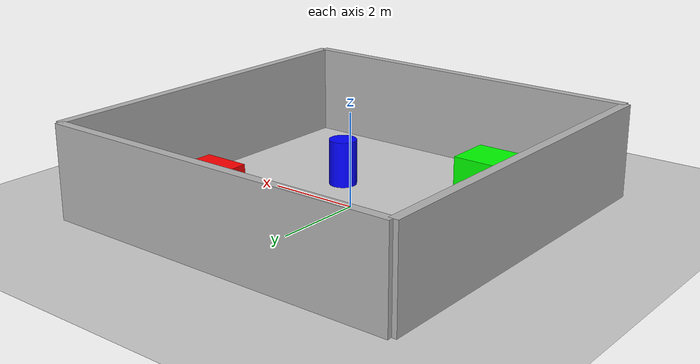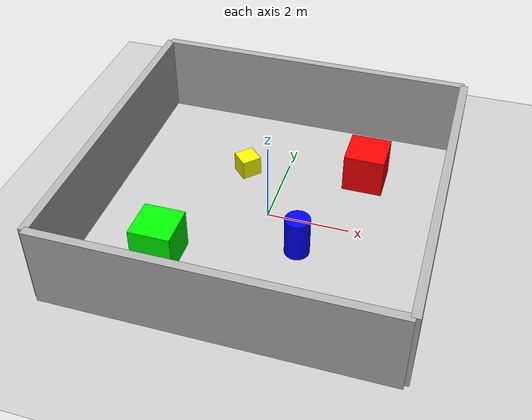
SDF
<?xml version="1.0" ?>
<sdf version="1.8">
  <world name="vacuum_world">

    <!-- Physics settings -->
    <physics name="10ms" type="ode">
      <max_step_size>0.01</max_step_size>
      <real_time_factor>1.0</real_time_factor>
      <real_time_update_rate>100</real_time_update_rate>
    </physics>

    <!-- Plugin for physics -->
    <plugin
      filename="gz-sim-physics-system"
      name="gz::sim::systems::Physics">
    </plugin>

    <!-- Plugin for user commands -->
    <plugin
      filename="gz-sim-user-commands-system"
      name="gz::sim::systems::UserCommands">
    </plugin>

    <!-- Plugin for scene broadcaster -->
    <plugin
      filename="gz-sim-scene-broadcaster-system"
      name="gz::sim::systems::SceneBroadcaster">
    </plugin>

    <!-- Plugin for sensors -->
    <plugin
      filename="gz-sim-sensors-system"
      name="gz::sim::systems::Sensors">
      <render_engine>ogre2</render_engine>
    </plugin>

    <!-- Sun light -->
    <light type="directional" name="sun">
      <cast_shadows>true</cast_shadows>
      <pose>0 0 10 0 0 0</pose>
      <diffuse>0.8 0.8 0.8 1</diffuse>
      <specular>0.2 0.2 0.2 1</specular>
      <attenuation>
        <range>1000</range>
        <constant>0.9</constant>
        <linear>0.01</linear>
        <quadratic>0.001</quadratic>
      </attenuation>
      <direction>-0.5 0.1 -0.9</direction>
    </light>

    <!-- Ground plane -->
    <model name="ground_plane">
      <static>true</static>
      <link name="link">
        <collision name="collision">
          <geometry>
            <plane>
              <normal>0 0 1</normal>
              <size>100 100</size>
            </plane>
          </geometry>
        </collision>
        <visual name="visual">
          <geometry>
            <plane>
              <normal>0 0 1</normal>
              <size>100 100</size>
            </plane>
          </geometry>
          <material>
            <ambient>0.8 0.8 0.8 1</ambient>
            <diffuse>0.8 0.8 0.8 1</diffuse>
            <specular>0.8 0.8 0.8 1</specular>
          </material>
        </visual>
      </link>
    </model>

    <!-- Simple test obstacles -->
    <model name="box1">
      <pose>2 2 0.5 0 0 0</pose>
      <static>true</static>
      <link name="link">
        <collision name="collision">
          <geometry>
            <box>
              <size>1 1 1</size>
            </box>
          </geometry>
        </collision>
        <visual name="visual">
          <geometry>
            <box>
              <size>1 1 1</size>
            </box>
          </geometry>
          <material>
            <ambient>1 0 0 1</ambient>
            <diffuse>1 0 0 1</diffuse>
            <specular>1 0 0 1</specular>
          </material>
        </visual>
      </link>
    </model>

    <model name="box2">
      <pose>-2 -2 0.5 0 0 0</pose>
      <static>true</static>
      <link name="link">
        <collision name="collision">
          <geometry>
            <box>
              <size>1 1 1</size>
            </box>
          </geometry>
        </collision>
        <visual name="visual">
          <geometry>
            <box>
              <size>1 1 1</size>
            </box>
          </geometry>
          <material>
            <ambient>0 1 0 1</ambient>
            <diffuse>0 1 0 1</diffuse>
            <specular>0 1 0 1</specular>
          </material>
        </visual>
      </link>
    </model>

    <!-- Boundary walls creating an enclosed room (8m x 8m) -->
    <!-- North wall -->
    <model name="wall_north">
      <pose>0 4 1 0 0 0</pose>
      <static>true</static>
      <link name="link">
        <collision name="collision">
          <geometry>
            <box>
              <size>8 0.2 2</size>
            </box>
          </geometry>
        </collision>
        <visual name="visual">
          <geometry>
            <box>
              <size>8 0.2 2</size>
            </box>
          </geometry>
          <material>
            <ambient>0.7 0.7 0.7 1</ambient>
            <diffuse>0.7 0.7 0.7 1</diffuse>
            <specular>0.5 0.5 0.5 1</specular>
          </material>
        </visual>
      </link>
    </model>

    <!-- South wall -->
    <model name="wall_south">
      <pose>0 -4 1 0 0 0</pose>
      <static>true</static>
      <link name="link">
        <collision name="collision">
          <geometry>
            <box>
              <size>8 0.2 2</size>
            </box>
          </geometry>
        </collision>
        <visual name="visual">
          <geometry>
            <box>
              <size>8 0.2 2</size>
            </box>
          </geometry>
          <material>
            <ambient>0.7 0.7 0.7 1</ambient>
            <diffuse>0.7 0.7 0.7 1</diffuse>
            <specular>0.5 0.5 0.5 1</specular>
          </material>
        </visual>
      </link>
    </model>

    <!-- East wall -->
    <model name="wall_east">
      <pose>4 0 1 0 0 0</pose>
      <static>true</static>
      <link name="link">
        <collision name="collision">
          <geometry>
            <box>
              <size>0.2 8 2</size>
            </box>
          </geometry>
        </collision>
        <visual name="visual">
          <geometry>
            <box>
              <size>0.2 8 2</size>
            </box>
          </geometry>
          <material>
            <ambient>0.7 0.7 0.7 1</ambient>
            <diffuse>0.7 0.7 0.7 1</diffuse>
            <specular>0.5 0.5 0.5 1</specular>
          </material>
        </visual>
      </link>
    </model>

    <!-- West wall -->
    <model name="wall_west">
      <pose>-4 0 1 0 0 0</pose>
      <static>true</static>
      <link name="link">
        <collision name="collision">
          <geometry>
            <box>
              <size>0.2 8 2</size>
            </box>
          </geometry>
        </collision>
        <visual name="visual">
          <geometry>
            <box>
              <size>0.2 8 2</size>
            </box>
          </geometry>
          <material>
            <ambient>0.7 0.7 0.7 1</ambient>
            <diffuse>0.7 0.7 0.7 1</diffuse>
            <specular>0.5 0.5 0.5 1</specular>
          </material>
        </visual>
      </link>
    </model>

    <!-- Additional interior obstacles for more interesting environment -->
    <model name="cylinder_obstacle">
      <pose>1 -1 0.5 0 0 0</pose>
      <static>true</static>
      <link name="link">
        <collision name="collision">
          <geometry>
            <cylinder>
              <radius>0.3</radius>
              <length>1</length>
            </cylinder>
          </geometry>
        </collision>
        <visual name="visual">
          <geometry>
            <cylinder>
              <radius>0.3</radius>
              <length>1</length>
            </cylinder>
          </geometry>
          <material>
            <ambient>0 0 1 1</ambient>
            <diffuse>0 0 1 1</diffuse>
            <specular>0 0 1 1</specular>
          </material>
        </visual>
      </link>
    </model>

    <model name="small_box">
      <pose>-1 1.5 0.25 0 0 0.785</pose>
      <static>true</static>
      <link name="link">
        <collision name="collision">
          <geometry>
            <box>
              <size>0.5 0.5 0.5</size>
            </box>
          </geometry>
        </collision>
        <visual name="visual">
          <geometry>
            <box>
              <size>0.5 0.5 0.5</size>
            </box>
          </geometry>
          <material>
            <ambient>1 1 0 1</ambient>
            <diffuse>1 1 0 1</diffuse>
            <specular>1 1 0 1</specular>
          </material>
        </visual>
      </link>
    </model>

  </world>
</sdf>
